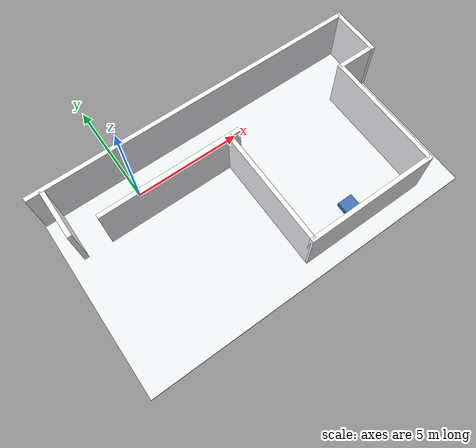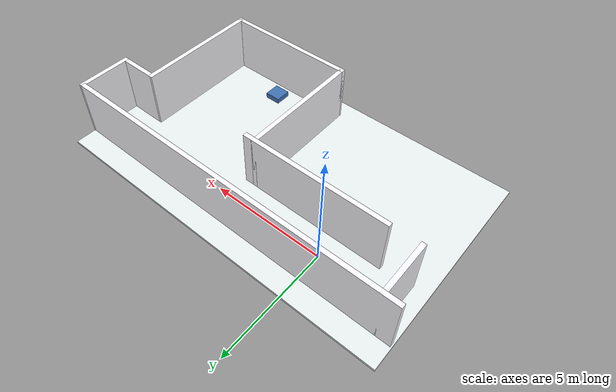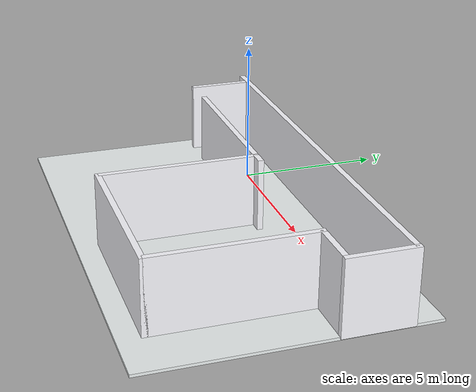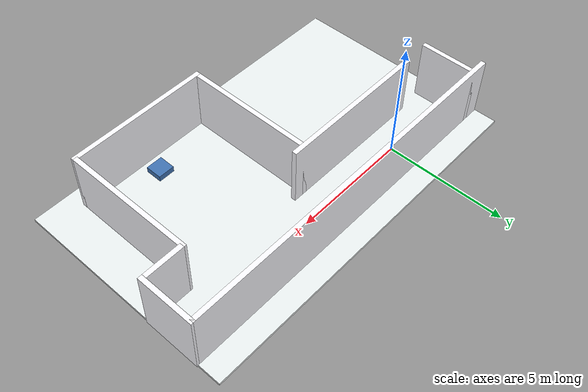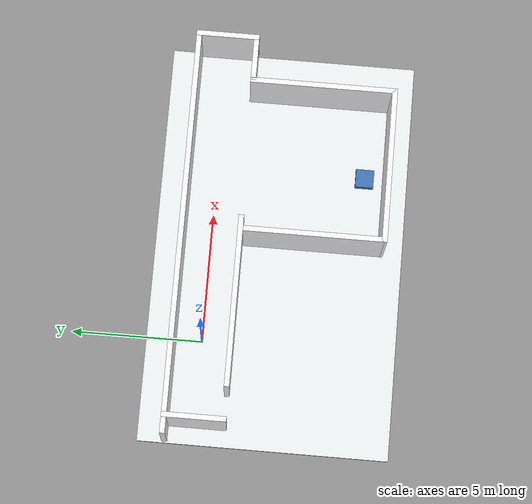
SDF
<sdf version="1.9">
 <world name="park_robot">
  <plugin filename="gz-sim-physics-system" name="gz::sim::systems::Physics"/>
  <plugin filename="gz-sim-user-commands-system" name="gz::sim::systems::UserCommands"/>
  <plugin filename="gz-sim-scene-broadcaster-system" name="gz::sim::systems::SceneBroadcaster"/>
  <plugin filename="gz-sim-sensors-system" name="gz::sim::systems::Sensors">
   <render_engine>ogre2</render_engine>
  </plugin>
  <plugin name="gz::sim::systems::Imu" filename="libgz-sim-imu-system.so"/>
  <plugin name="gz::sim::systems::NavSat" filename="libgz-sim-navsat-system.so"/>
  <gravity>0 0 -9.81</gravity>
  <scene>
   <ambient>0.78 0.78 0.78 1</ambient>
   <background>0.96 0.98 1.0 1</background>
   <shadows>true</shadows>
  </scene>
  <physics name="default_physics" type="ode">
   <max_step_size>0.002</max_step_size>
   <real_time_factor>1.0</real_time_factor>
   <real_time_update_rate>500</real_time_update_rate>
  </physics>
  <light type="directional" name="sun">
   <pose>0 0 12 0 0 0</pose>
   <diffuse>0.95 0.95 0.95 1</diffuse>
   <specular>0.2 0.2 0.2 1</specular>
   <direction>-0.35 0.2 -1</direction>
  </light>
  <model name="floor">
   <static>true</static>
   <pose>3.8 -2.6 0 0 0 0</pose>
   <link name="link">
    <collision name="collision"><geometry><box><size>15.5 9.5 0.1</size></box></geometry></collision>
    <visual name="visual">
     <geometry><box><size>15.5 9.5 0.1</size></box></geometry>
     <material><ambient>0.88 0.90 0.90 1</ambient><diffuse>0.92 0.94 0.94 1</diffuse></material>
    </visual>
   </link>
  </model>
  <model name="hall_north_wall">
   <static>true</static>
   <pose>3.8 1.1 1.3 0 0 0</pose>
   <link name="link">
    <collision name="collision"><geometry><box><size>15.4 0.2 2.6</size></box></geometry></collision>
    <visual name="visual">
     <geometry><box><size>15.4 0.2 2.6</size></box></geometry>
     <material><ambient>0.98 0.98 1.0 1</ambient><diffuse>0.98 0.98 1.0 1</diffuse></material>
    </visual>
   </link>
  </model>
  <model name="hall_south_wall_before_room">
   <static>true</static>
   <pose>1.25 -1.1 1.3 0 0 0</pose>
   <link name="link">
    <collision name="collision"><geometry><box><size>6.5 0.2 2.6</size></box></geometry></collision>
    <visual name="visual">
     <geometry><box><size>6.5 0.2 2.6</size></box></geometry>
     <material><ambient>0.98 0.98 1.0 1</ambient><diffuse>0.98 0.98 1.0 1</diffuse></material>
    </visual>
   </link>
  </model>
  <model name="hall_south_wall_after_room">
   <static>true</static>
   <pose>10.6 -1.1 1.3 0 0 0</pose>
   <link name="link">
    <collision name="collision"><geometry><box><size>1.6 0.2 2.6</size></box></geometry></collision>
    <visual name="visual">
     <geometry><box><size>1.6 0.2 2.6</size></box></geometry>
     <material><ambient>0.98 0.98 1.0 1</ambient><diffuse>0.98 0.98 1.0 1</diffuse></material>
    </visual>
   </link>
  </model>
  <model name="hall_west_end">
   <static>true</static>
   <pose>-3.2 0 1.3 0 0 0</pose>
   <link name="link">
    <collision name="collision"><geometry><box><size>0.2 2.4 2.6</size></box></geometry></collision>
    <visual name="visual">
     <geometry><box><size>0.2 2.4 2.6</size></box></geometry>
     <material><ambient>0.98 0.98 1.0 1</ambient><diffuse>0.98 0.98 1.0 1</diffuse></material>
    </visual>
   </link>
  </model>
  <model name="hall_east_end">
   <static>true</static>
   <pose>11.5 0 1.3 0 0 0</pose>
   <link name="link">
    <collision name="collision"><geometry><box><size>0.2 2.4 2.6</size></box></geometry></collision>
    <visual name="visual">
     <geometry><box><size>0.2 2.4 2.6</size></box></geometry>
     <material><ambient>0.98 0.98 1.0 1</ambient><diffuse>0.98 0.98 1.0 1</diffuse></material>
    </visual>
   </link>
  </model>
  <model name="room_west_wall">
   <static>true</static>
   <pose>4 -3.75 1.3 0 0 0</pose>
   <link name="link">
    <collision name="collision"><geometry><box><size>0.2 5.5 2.6</size></box></geometry></collision>
    <visual name="visual">
     <geometry><box><size>0.2 5.5 2.6</size></box></geometry>
     <material><ambient>0.98 0.98 1.0 1</ambient><diffuse>0.98 0.98 1.0 1</diffuse></material>
    </visual>
   </link>
  </model>
  <model name="room_east_wall">
   <static>true</static>
   <pose>9.8 -3.75 1.3 0 0 0</pose>
   <link name="link">
    <collision name="collision"><geometry><box><size>0.2 5.5 2.6</size></box></geometry></collision>
    <visual name="visual">
     <geometry><box><size>0.2 5.5 2.6</size></box></geometry>
     <material><ambient>0.98 0.98 1.0 1</ambient><diffuse>0.98 0.98 1.0 1</diffuse></material>
    </visual>
   </link>
  </model>
  <model name="room_south_wall">
   <static>true</static>
   <pose>6.9 -6.5 1.3 0 0 0</pose>
   <link name="link">
    <collision name="collision"><geometry><box><size>6.0 0.2 2.6</size></box></geometry></collision>
    <visual name="visual">
     <geometry><box><size>6.0 0.2 2.6</size></box></geometry>
     <material><ambient>0.98 0.98 1.0 1</ambient><diffuse>0.98 0.98 1.0 1</diffuse></material>
    </visual>
   </link>
  </model>
  <model name="room_back_marker">
   <static>true</static>
   <pose>6.9 -5.7 0.15 0 0 0</pose>
   <link name="link">
    <collision name="collision"><geometry><box><size>0.7 0.7 0.3</size></box></geometry></collision>
    <visual name="visual">
     <geometry><box><size>0.7 0.7 0.3</size></box></geometry>
     <material><ambient>0.25 0.45 0.70 1</ambient><diffuse>0.25 0.45 0.70 1</diffuse></material>
    </visual>
   </link>
  </model>
 </world>
</sdf>
